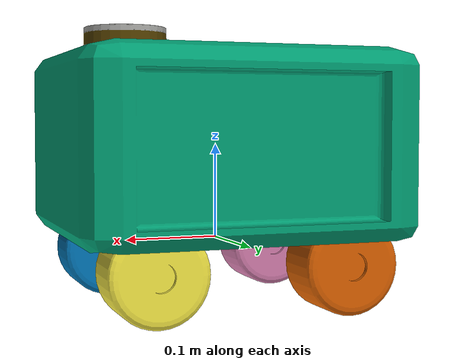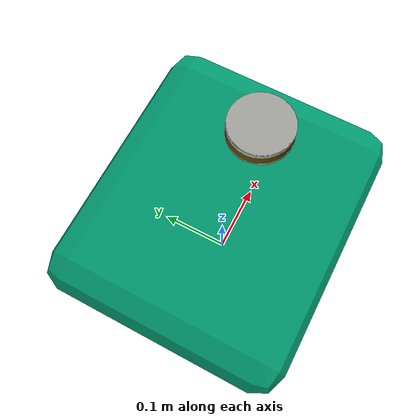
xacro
<?xml version="1.0"?>

<robot name="curdbot" xmlns:xacro="http://www.ros.org/wiki/xacro">
<xacro:include filename="$(find curdbot_description)/urdf/main.gazebo"/>

<link name="imu_link"/>

<link name="laser">
<inertial>
    <origin xyz="0.0 0.0 0.0" rpy="0 0 0" />
    <mass value="0.3" />
    <inertia ixx="0.3" ixy="0" ixz="0" iyy="0.2" iyz="0" izz="1.001"/>
</inertial>
<visual>
    <origin xyz="0 0 0" rpy="0 0 0" />
    <geometry>
    <mesh filename="package://curdbot_description/meshes/dae/lidar.dae" scale="0.8 0.8 0.3" />
    </geometry>
</visual>
<collision>
<origin xyz="0 0.0 0" rpy="0 0 0" />
    <geometry>
    <mesh filename="package://curdbot_description/meshes/dae/lidar.dae" scale="0.8 0.8 0.3" />
    </geometry>
</collision>
</link>

<joint name="imu_joint" type="fixed">
    <axis xyz="0 0 0" />
    <origin xyz="0 0 0.05" rpy="0 0 0" />
    <parent link="curdbot_base" />
    <child link="imu_link" />
</joint>

<joint name="laser_joint" type="fixed">
    <axis xyz="0 0 0"/>
    <origin xyz="0.1 0 0.2" rpy="0 0 0" />
    <parent link="curdbot_base" />
    <child link="laser" />
</joint>

<link name="curdbot_base">
<inertial>
    <origin xyz="0.0 0.0 0.0" rpy="0 0 0" />
    <mass value="28" />
    <inertia ixx="0.3" ixy="0" ixz="0" iyy="0.2" iyz="0" izz="1.001"/>
</inertial>
<visual>
    <origin xyz="0 0 0" rpy="0 0 0" />
    <geometry>
    <mesh filename="package://curdbot_description/meshes/dae/chassis.dae" />
    </geometry>
</visual>
<collision>
<origin xyz="0 0.0 0" rpy="0 0 0" />
    <geometry>
    <mesh filename="package://curdbot_description/meshes/dae/chassis.dae" />
    </geometry>
</collision>
</link>

<joint name="FLJ" type="continuous">
    <axis xyz="0 1 0" />
    <origin xyz="0.1 0.1 -0.02" rpy="0 0 0" />
    <parent link="curdbot_base" />
    <child link="FL_wheel" />
</joint>

<link name="FL_wheel">
<inertial>
    <origin xyz="0 0.0 0.12" rpy="0 0 0" />
    <mass value="0.5" />
        <inertia ixx="0.001" ixy="0" ixz="0" iyy="0.001" iyz="0" izz="0.001"/>
</inertial>
<visual>
    <origin xyz="0 0 0" rpy="0 0 0" />
    <geometry>
    <mesh filename="package://curdbot_description/meshes/dae/wheel.dae" />
    </geometry>
</visual>
<collision>
<origin xyz="0 0.0 0" rpy="0 0 0" />
    <geometry>
    <mesh filename="package://curdbot_description/meshes/dae/wheel.dae" />
    </geometry>
</collision>
</link>

<joint name="FRJ" type="continuous">
<axis xyz="0 1 0" />
    <origin xyz="0.1 -0.1 -0.02" rpy="0 0 0" />
    <parent link="curdbot_base" />
    <child link="FR_wheel" />
</joint>

<link name="FR_wheel">
<inertial>
    <origin xyz="0 0.0 0.12" rpy="0 0 0" />
    <mass value="0.5" />
        <inertia ixx="0.001" ixy="0" ixz="0" iyy="0.001" iyz="0" izz="0.001"/>
</inertial>
<visual>
    <origin xyz="0 0 0" rpy="0 0 0" />
    <geometry>
    <mesh filename="package://curdbot_description/meshes/dae/wheel.dae" />
    </geometry>
</visual>
<collision>
<origin xyz="0 0.0 0" rpy="0 0 0" />
    <geometry>
    <mesh filename="package://curdbot_description/meshes/dae/wheel.dae" />
    </geometry>
</collision>
</link>

<joint name="RLJ" type="continuous">
<axis xyz="0 1 0" />
    <origin xyz="-0.1 0.1 -0.02" rpy="0 0 0" />
    <parent link="curdbot_base" />
    <child link="RL_wheel" />
</joint>

<link name="RL_wheel">
<inertial>
    <origin xyz="0 0.0 0.12" rpy="0 0 0" />
    <mass value="0.5" />
        <inertia ixx="0.001" ixy="0" ixz="0" iyy="0.001" iyz="0" izz="0.001"/>
</inertial>
<visual>
    <origin xyz="0 0 0" rpy="0 0 0" />
    <geometry>
    <mesh filename="package://curdbot_description/meshes/dae/wheel.dae" />
    </geometry>
</visual>
<collision>
<origin xyz="0 0.0 0" rpy="0 0 0" />
    <geometry>
    <mesh filename="package://curdbot_description/meshes/dae/wheel.dae" />
    </geometry>
</collision>
</link>

<joint name="RRJ" type="continuous">
<axis xyz="0 1 0" />
    <origin xyz="-0.1 -0.1 -0.02" rpy="0 0 0" />
    <parent link="curdbot_base" />
    <child link="RR_wheel" />
</joint>

<link name="RR_wheel">
<inertial>
    <origin xyz="0 0.0 0.12" rpy="0 0 0" />
    <mass value="0.5" />
        <inertia ixx="0.001" ixy="0" ixz="0" iyy="0.001" iyz="0" izz="0.001"/>
</inertial>
<visual>
    <origin xyz="0 0 0" rpy="0 0 0" />
    <geometry>
    <mesh filename="package://curdbot_description/meshes/dae/wheel.dae" />
    </geometry>
</visual>
<collision>
<origin xyz="0 0.0 0" rpy="0 0 0" />
    <geometry>
    <mesh filename="package://curdbot_description/meshes/dae/wheel.dae" />
    </geometry>
</collision>
</link>

</robot>
